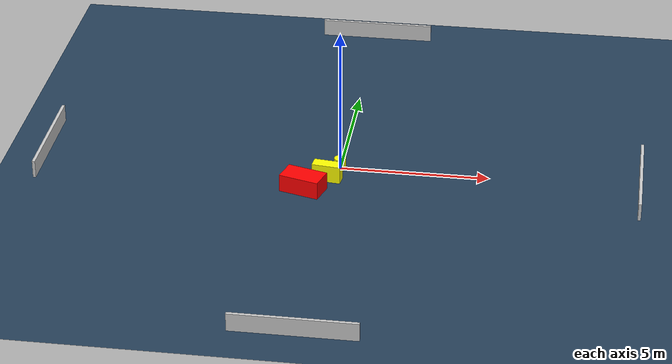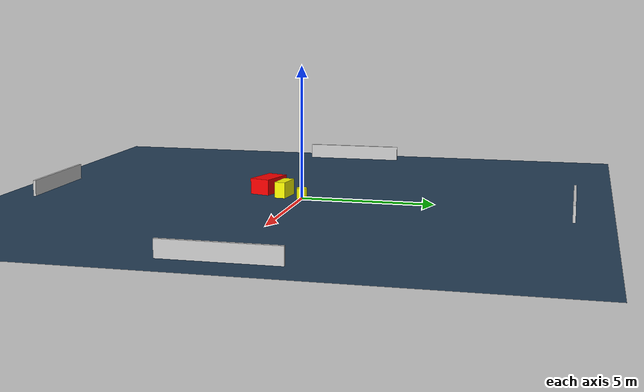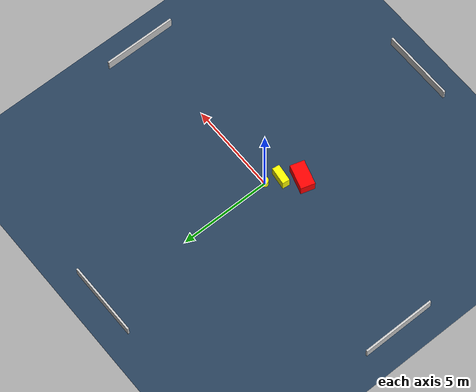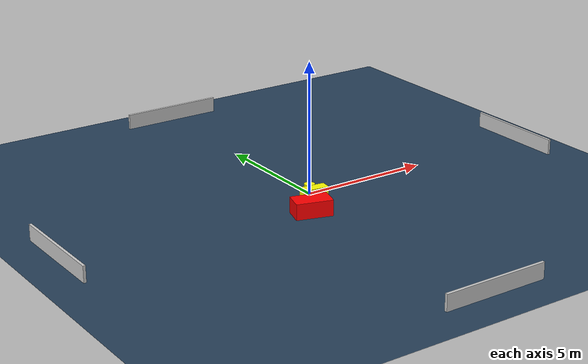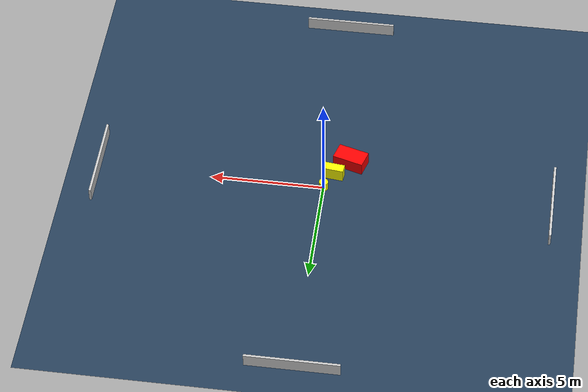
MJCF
<?xml version="1.0" ?>
<mujoco model="generated_environment">
  <option timestep="0.01" integrator="RK4" cone="elliptic"/>
  <default>
    <geom density="1"/>
  </default>
  <asset>
    <texture builtin="gradient" height="3072" name="skybox" rgb1="0.3 0.5 0.7" rgb2="0 0 0" type="skybox" width="512"/>
    <texture builtin="checker" height="300" name="groundplane" rgb1="0.2 0.3 0.4" rgb2="0.1 0.2 0.3" type="2d" width="300"/>
    <material name="groundplane" reflectance="0.2" texrepeat="5 5" texture="groundplane"/>
  </asset>
  <worldbody>
    <light dir="0 0 -1" directional="true" pos="0 0 1.5"/>
    <geom condim="3" friction="0.5 0.005 0.001" material="groundplane" name="floor" pos="0 0 0" size="0 0 0.05" type="plane"/>
    <body name="walls">
      <geom name="wall_1" condim="4" pos="-10.0 0.0 0.3" rgba="0.800000011920929 0.800000011920929 0.800000011920929 1.0" size="0.05 2.0 0.3" type="box"/>
      <geom name="wall_2" condim="4" pos="10.0 0.0 0.3" rgba="0.800000011920929 0.800000011920929 0.800000011920929 1.0" size="0.05 2.0 0.3" type="box"/>
      <geom name="wall_3" condim="4" pos="0.0 -10.0 0.3" rgba="0.800000011920929 0.800000011920929 0.800000011920929 1.0" size="2.0 0.05 0.3" type="box"/>
      <geom name="wall_4" condim="4" pos="0.0 10.0 0.3" rgba="0.800000011920929 0.800000011920929 0.800000011920929 1.0" size="2.0 0.05 0.3" type="box"/>
    </body>
    <body name="robot">
      <joint name="joint_x" type="slide" pos="0 0 0" axis="1 0 0"/>
      <joint name="joint_y" type="slide" pos="0 0 0" axis="0 1 0"/>
      <geom name="robot" type="cylinder" pos="0.0 0.0 0.2" size="0.2 0.2 0.0" mass="5.0" friction="1.0 0.005 0.0001" condim="4" rgba="1.0 1.0 0.0 1.0"/>
    </body>
    <body name="obstacle_1_movable">
      <geom name="obstacle_1_movable" condim="4" pos="-0.32492287258434965 -0.7595252107193459 0.3" euler="0 0 83.07987643428592" friction="0.0 0.005 0.001" rgba="1.0 1.0 0.0 1.0" size="0.20225884991952078 0.4803340816417143 0.3" type="box" mass="0.1"/>
      <joint type="free"/>
    </body>
    <body name="obstacle_2_static">
      <geom name="obstacle_2_static" condim="4" pos="-1.0091503058199436 -1.5683217233351263 0.3" euler="0 0 253.65177614269564" friction="0.0 0.005 0.001" rgba="1.0 0.0 0.0 1.0" size="0.3891846540692844 0.6863793098432058 0.3" type="box"/>
    </body>
  </worldbody>
  <actuator>
    <motor name="actuator_x" joint="joint_x" gear="1" ctrlrange="-1 1"/>
    <motor name="actuator_y" joint="joint_y" gear="1" ctrlrange="-1 1"/>
  </actuator>
</mujoco>
